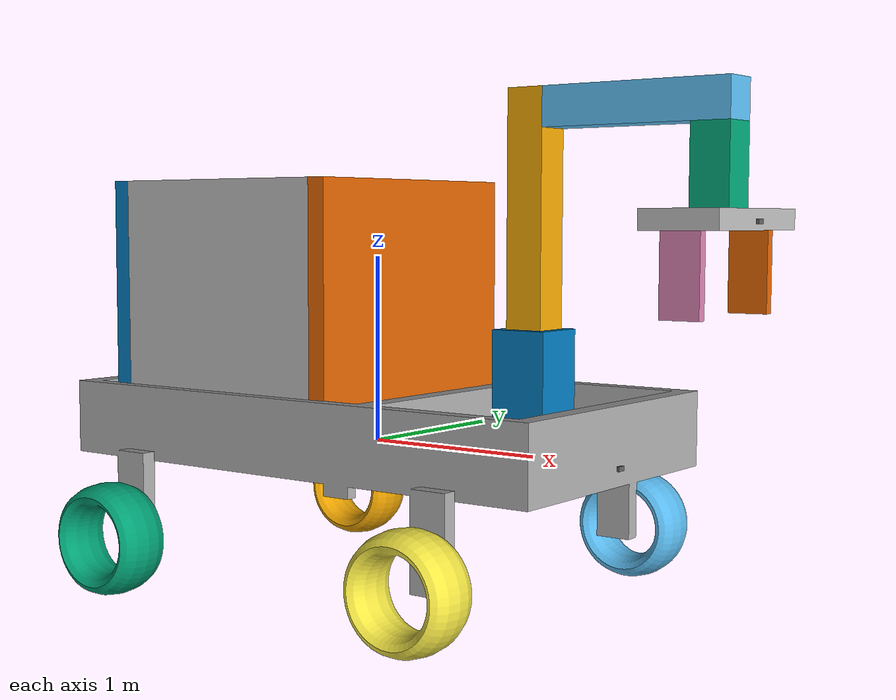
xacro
<?xml version="1.0"?>
<!-- created with Phobos 1.0.1 "Capricious Choutengan" -->
  <robot name="robot" xmlns:xacro="http://wiki.ros.org/xacro">

    <xacro:include filename="$(find robot_description)/urdf/sensors/sensors.urdf.xacro"/>
    <xacro:arg name="prefix" default=""/>
    <xacro:arg name="my_robot" default=""/>

    <link name="arm1">
      <inertial>
        <origin xyz="0 0.62709 0" rpy="0 0 0"/>
        <mass value="4.0"/>
        <inertia ixx="1e-05" ixy="0" ixz="0" iyy="0.00044" iyz="0" izz="2e-05"/>
      </inertial>
      <visual name="Cube.006">
        <origin xyz="0 0.62709 0" rpy="-1.5708 0 0"/>
        <geometry>
          <box size="0.2 0.2 1.2"/>
        </geometry>
      </visual>
      <collision name="Cube.006.000">
        <origin xyz="0 0.62709 0" rpy="-1.5708 0 0"/>
        <geometry>
          <box size="0.2 0.2 1.2"/>
        </geometry>
      </collision>
    </link>

    <link name="arm2">
      <inertial>
        <origin xyz="0.6 0 0" rpy="0 0 0"/>
        <mass value="2.0"/>
        <inertia ixx="0.00083" ixy="0" ixz="0" iyy="2e-05" iyz="0" izz="2e-05"/>
      </inertial>
      <visual name="Cube.007">
        <origin xyz="0.6 0 0" rpy="0 0 0"/>
        <geometry>
          <box size="1.0 0.2 0.2"/>
        </geometry>
      </visual>
      <collision name="Cube.007">
        <origin xyz="0.6 0 0" rpy="0 0 0"/>
        <geometry>
          <box size="1.0 0.2 0.2"/>
        </geometry>
      </collision>
    </link>

    <link name="arm3">
      <inertial>
        <origin xyz="0 -0.3 0" rpy="0 0 0"/>
        <mass value="1.0"/>
        <inertia ixx="2e-05" ixy="0" ixz="0" iyy="2e-05" iyz="0" izz="2e-05"/>
      </inertial>
      <visual name="Cube.008">
        <origin xyz="0 -0.3 0" rpy="-1.5708 0 0"/>
        <geometry>
          <box size="0.2 0.2 0.4"/>
        </geometry>
      </visual>
      <collision name="Cube.008">
        <origin xyz="0 -0.3 0" rpy="-1.5708 0 0"/>
        <geometry>
          <box size="0.2 0.2 0.4"/>
        </geometry>
      </collision>
    </link>

    <link name="base_link">
      <inertial>
        <origin xyz="0 0 0" rpy="0 0 0"/>
        <mass value="150.0"/>
        <inertia ixx="37.11703" ixy="10.21381" ixz="0" iyy="63.78499" iyz="0" izz="72.02697"/>
      </inertial>
      <visual name="Cube.000.000">
        <origin xyz="0 0 0" rpy="1.5708 0 0"/>
        <geometry>
          <mesh filename="file://$(find robot_description)/meshes/dae/Cube.025.dae" scale="1.0 1.0 0.81818"/>
        </geometry>
        <material name="Material"/>
      </visual>
      <collision name="Cube.000.000.000">
        <origin xyz="0 0 0" rpy="1.5708 0 0"/>
        <geometry>
          <mesh filename="file://$(find robot_description)/meshes/dae/Cube.027.dae" scale="1.0 1.0 0.81818"/>
        </geometry>
      </collision>
    </link>

    <link name="base_arm">
      <inertial>
        <origin xyz="0 0 0" rpy="0 0 0"/>
        <mass value="1.0"/>
        <inertia ixx="0.00013" ixy="0" ixz="0" iyy="0.00041" iyz="0" izz="0.00013"/>
      </inertial>
      <visual name="Cube.005">
        <origin xyz="0 0 0" rpy="0 0 0"/>
        <geometry>
          <box size="0.3 0.3 0.5"/>
        </geometry>
      </visual>
      <collision name="Cube.005.000">
        <origin xyz="0 0 0" rpy="0 0 0"/>
        <geometry>
          <mesh filename="file://$(find robot_description)/meshes/dae/Cube.071.dae" scale="0.6 0.4 1.0"/>
        </geometry>
      </collision>
    </link>

    <link name="claw_1">
      <inertial>
        <origin xyz="0 -0.25 0" rpy="0 0 0"/>
        <mass value="0.2"/>
        <inertia ixx="2e-05" ixy="0" ixz="0" iyy="2e-05" iyz="0" izz="2e-05"/>
      </inertial>
      <visual name="Cube.011">
        <origin xyz="0 -0.25 0" rpy="-1.5708 0 0"/>
        <geometry>
          <box size="0.2 0.05 0.4"/>
        </geometry>
      </visual>
      <collision name="Cube.011">
        <origin xyz="0 -0.25 0" rpy="-1.5708 0 0"/>
        <geometry>
          <box size="0.2 0.05 0.4"/>
        </geometry>
      </collision>
    </link>

    <link name="claw_2">
      <inertial>
        <origin xyz="0 0.25 0" rpy="0 0 0"/>
        <mass value="0.2"/>
        <inertia ixx="2e-05" ixy="0" ixz="0" iyy="2e-05" iyz="0" izz="2e-05"/>
      </inertial>
      <visual name="Cube.010">
        <origin xyz="0 0.25 0" rpy="1.5708 0 0"/>
        <geometry>
          <box size="0.2 0.05 0.4"/>
        </geometry>
      </visual>
      <collision name="Cube.010">
        <origin xyz="0 0.25 0" rpy="1.5708 0 0"/>
        <geometry>
          <box size="0.2 0.05 0.4"/>
        </geometry>
      </collision>
    </link>

    <link name="end_effector">
      <inertial>
        <origin xyz="0 0 0" rpy="0 0 0"/>
        <mass value="1.5"/>
        <inertia ixx="0.00013" ixy="0" ixz="0" iyy="0.00054" iyz="0" izz="1e-05"/>
      </inertial>
      <visual name="Cube.009">
        <origin xyz="0 0 0" rpy="0 0 0"/>
        <geometry>
          <box size="0.4 0.8 0.1"/>
        </geometry>
      </visual>
      <collision name="Cube.009">
        <origin xyz="0 0 0" rpy="0 0 0"/>
        <geometry>
          <box size="0.4 0.8 0.1"/>
        </geometry>
      </collision>
    </link>

    <link name="left_b_wheel">
      <inertial>
        <origin xyz="0 0 0" rpy="0 0 0"/>
        <mass value="2.0"/>
        <inertia ixx="0.01936" ixy="0" ixz="0" iyy="0.03745" iyz="0" izz="0.7564"/>
      </inertial>
      <visual name="Torus.000">
        <origin xyz="0 0 0" rpy="-3.14159 0 0"/>
        <geometry>
          <mesh filename="file://$(find robot_description)/meshes/dae/Torus.004.dae" scale="0.24 0.24 0.6"/>
        </geometry>
      </visual>
      <collision name="Torus.000.000">
        <origin xyz="0 0 0" rpy="-3.14159 0 0"/>
        <geometry>
          <mesh filename="file://$(find robot_description)/meshes/dae/Torus.005.dae" scale="0.6 0.6 0.6"/>
        </geometry>
      </collision>
    </link>

    <link name="left_f_wheel">
      <inertial>
        <origin xyz="0 0 0" rpy="0 0 0"/>
        <mass value="2.0"/>
        <inertia ixx="0.01936" ixy="0" ixz="0" iyy="0.03745" iyz="0" izz="0.7564"/>
      </inertial>
      <visual name="Torus.003">
        <origin xyz="0 0 0" rpy="0 0 0"/>
        <geometry>
          <mesh filename="file://$(find robot_description)/meshes/dae/Torus.003.dae" scale="0.24 0.24 0.6"/>
        </geometry>
      </visual>
      <collision name="Torus.003.000">
        <origin xyz="0 0 0" rpy="0 0 0"/>
        <geometry>
          <mesh filename="file://$(find robot_description)/meshes/dae/Torus.006.dae" scale="0.6 0.6 0.6"/>
        </geometry>
      </collision>
    </link>

    <link name="right_b_wheel">
      <inertial>
        <origin xyz="0 0 0" rpy="0 0 0"/>
        <mass value="2.0"/>
        <inertia ixx="0.01936" ixy="0" ixz="0" iyy="0.03745" iyz="0" izz="0.7564"/>
      </inertial>
      <visual name="Torus.001">
        <origin xyz="0 0 0" rpy="-3.14159 0 0"/>
        <geometry>
          <mesh filename="file://$(find robot_description)/meshes/dae/Torus.007.dae" scale="0.24 0.24 0.6"/>
        </geometry>
      </visual>
      <collision name="Torus.001.000">
        <origin xyz="0 0 0" rpy="-3.14159 0 0"/>
        <geometry>
          <mesh filename="file://$(find robot_description)/meshes/dae/Torus.008.dae" scale="0.6 0.6 0.6"/>
        </geometry>
      </collision>
    </link>

    <link name="right_f_wheel">
      <inertial>
        <origin xyz="0 0 0" rpy="0 0 0"/>
        <mass value="2.0"/>
        <inertia ixx="0.14197" ixy="0" ixz="0" iyy="0.23407" iyz="0" izz="0.14197"/>
      </inertial>
      <visual name="Torus.002">
        <origin xyz="0 0 0" rpy="-3.14159 0 0"/>
        <geometry>
          <mesh filename="file://$(find robot_description)/meshes/dae/Torus.002.dae" scale="0.24 0.24 0.6"/>
        </geometry>
      </visual>
      <collision name="Torus.002.000">
        <origin xyz="0 0 0" rpy="-3.14159 0 0"/>
        <geometry>
          <mesh filename="file://$(find robot_description)/meshes/dae/Torus.000.dae" scale="0.6 0.6 0.6"/>
        </geometry>
      </collision>
    </link>

    <link name="zback_box">
      <inertial>
        <origin xyz="0 0 0" rpy="0 0 0"/>
        <mass value="0.001"/>
        <inertia ixx="0.001" ixy="0" ixz="0" iyy="0.001" iyz="0" izz="0.001"/>
      </inertial>
      <visual name="Cube">
        <origin xyz="0 0 0" rpy="0 0 0"/>
        <geometry>
          <box size="0.1 1.5 1.35"/>
        </geometry>
      </visual>
      <collision name="Cube.000">
        <origin xyz="0 0 0" rpy="0 0 0"/>
        <geometry>
          <mesh filename="file://$(find robot_description)/meshes/dae/Cube.033.dae" scale="1.0 1.0 1.0"/>
        </geometry>
      </collision>
    </link>

    <link name="zfront_box">
      <inertial>
        <origin xyz="0 0 0" rpy="0 0 0"/>
        <mass value="0.001"/>
        <inertia ixx="0.001" ixy="0" ixz="0" iyy="0.001" iyz="0" izz="0.001"/>
      </inertial>
      <visual name="Cube.002">
        <origin xyz="0 0 0" rpy="0 0 0"/>
        <geometry>
          <box size="0.1 1.5 1.35"/>
        </geometry>
      </visual>
      <collision name="Cube.002.000">
        <origin xyz="0 0 0" rpy="0 0 0"/>
        <geometry>
          <mesh filename="file://$(find robot_description)/meshes/dae/Cube.034.dae" scale="1.0 1.0 1.0"/>
        </geometry>
      </collision>
    </link>

    <link name="zleft_box">
      <inertial>
        <origin xyz="0 0 0" rpy="0 0 0"/>
        <mass value="0.001"/>
        <inertia ixx="0.001" ixy="0" ixz="0" iyy="0.001" iyz="0" izz="0.001"/>
      </inertial>
      <visual name="Cube.003">
        <origin xyz="0 0 0" rpy="0 0 0"/>
        <geometry>
          <box size="0.1 1.3 1.35"/>
        </geometry>
      </visual>
      <collision name="Cube.003.000">
        <origin xyz="0 0 0" rpy="0 0 0"/>
        <geometry>
          <mesh filename="file://$(find robot_description)/meshes/dae/Cube.032.dae" scale="1.0 1.0 1.0"/>
        </geometry>
      </collision>
    </link>

    <link name="zright_box">
      <inertial>
        <origin xyz="0 0 0" rpy="0 0 0"/>
        <mass value="0.001"/>
        <inertia ixx="0.001" ixy="0" ixz="0" iyy="0.001" iyz="0" izz="0.001"/>
      </inertial>
      <visual name="Cube.004">
        <origin xyz="0 0 0" rpy="0 0 0"/>
        <geometry>
          <box size="0.1 1.3 1.35"/>
        </geometry>
      </visual>
      <collision name="Cube.004.000">
        <origin xyz="0 0 0" rpy="0 0 0"/>
        <geometry>
          <mesh filename="file://$(find robot_description)/meshes/dae/Cube.035.dae" scale="1.0 1.0 1.0"/>
        </geometry>
      </collision>
    </link>

    <joint name="arm1" type="revolute">
      <origin xyz="0 0 0.22291" rpy="1.5708 0 0"/>
      <parent link="base_arm"/>
      <child link="arm1"/>
      <axis xyz="0 0 1.0"/>
      <limit lower="-1" upper="0.5" effort="0" velocity="0"/>
    </joint>

    <joint name="arm2" type="continuous">
      <origin xyz="0 1.12709 0" rpy="-1.5708 0 0"/>
      <parent link="arm1"/>
      <child link="arm2"/>
      <axis xyz="0 0 1.0"/>
      <limit effort="0" velocity="0"/>
    </joint>

    <joint name="arm3" type="revolute">
      <origin xyz="1.0 0 0" rpy="1.5708 0 0"/>
      <parent link="arm2"/>
      <child link="arm3"/>
      <axis xyz="0 0 1.0"/>
      <limit lower="-0.6" upper="3.1" effort="0" velocity="0"/>
    </joint>

    <joint name="base_arm" type="continuous">
      <origin xyz="1.0 0 0.4" rpy="0 0 0"/>
      <parent link="base_link"/>
      <child link="base_arm"/>
      <axis xyz="0 0 1.0"/>
      <limit effort="0" velocity="0"/>
    </joint>

    <joint name="claw_1" type="prismatic">
      <origin xyz="0 0.35 0" rpy="1.5708 0 0"/>
      <parent link="end_effector"/>
      <child link="claw_1"/>
      <axis xyz="0 0 1.0"/>
      <limit lower="0" upper="0.2" effort="0" velocity="0"/>
    </joint>

    <joint name="claw_2" type="prismatic">
      <origin xyz="0 -0.35 0" rpy="-1.5708 0 0"/>
      <parent link="end_effector"/>
      <child link="claw_2"/>
      <axis xyz="0 0 1.0"/>
      <limit lower="0" upper="0.2" effort="0" velocity="0"/>
    </joint>

    <joint name="end_effector" type="continuous">
      <origin xyz="0 -0.55 0" rpy="-1.5708 0 0"/>
      <parent link="arm3"/>
      <child link="end_effector"/>
      <axis xyz="0 0 1.0"/>
      <limit effort="0" velocity="0"/>
    </joint>

    <joint name="left_b_wheel" type="continuous">
      <origin xyz="-1.0 1.05 -0.5" rpy="-1.5708 0 0"/>
      <parent link="base_link"/>
      <child link="left_b_wheel"/>
      <axis xyz="0 0 1.0"/>
      <limit effort="0" velocity="0"/>
    </joint>

    <joint name="left_f_wheel" type="continuous">
      <origin xyz="1.0 1.05 -0.5" rpy="-1.5708 0 0"/>
      <parent link="base_link"/>
      <child link="left_f_wheel"/>
      <axis xyz="0 0 1.0"/>
      <limit effort="0" velocity="0"/>
    </joint>

    <joint name="right_b_wheel" type="continuous">
      <origin xyz="-1.0 -1.05 -0.5" rpy="-1.5708 0 0"/>
      <parent link="base_link"/>
      <child link="right_b_wheel"/>
      <axis xyz="0 0 1.0"/>
      <limit effort="0" velocity="0"/>
    </joint>

    <joint name="right_f_wheel" type="continuous">
      <origin xyz="1.0 -1.05 -0.5" rpy="-1.5708 0 0"/>
      <parent link="base_link"/>
      <child link="right_f_wheel"/>
      <axis xyz="0 0 1.0"/>
      <limit effort="0" velocity="0"/>
    </joint>

    <joint name="zback_box" type="fixed">
      <origin xyz="-1.2 0 0.735" rpy="0 0 0"/>
      <parent link="base_link"/>
      <child link="zback_box"/>
    </joint>

    <joint name="zfront_box" type="fixed">
      <origin xyz="0.2 0 0.735" rpy="0 0 0"/>
      <parent link="base_link"/>
      <child link="zfront_box"/>
    </joint>

    <joint name="zleft_box" type="fixed">
      <origin xyz="-0.5 0.7 0.735" rpy="0 0 1.5708"/>
      <parent link="base_link"/>
      <child link="zleft_box"/>
    </joint>

    <joint name="zright_box" type="fixed">
      <origin xyz="-0.5 -0.7 0.735" rpy="0 0 1.5708"/>
      <parent link="base_link"/>
      <child link="zright_box"/>
    </joint>

    <material name="Material">
      <color rgba="0.64 0.64 0.64 1.0"/>
    </material>

    <xacro:sensor_camera node_name="base_camera" node_namespace="$(arg my_robot)" frame_prefix="$(arg prefix)base_" parent="$(arg prefix)base_link" >
      <origin xyz="1.5 0.0 -0.01" rpy="0 0 0"/>
    </xacro:sensor_camera>
    <xacro:sensor_camera node_name="arm_camera" node_namespace="$(arg my_robot)" frame_prefix="$(arg prefix)arm_" parent="$(arg prefix)end_effector" >
      <origin xyz="0.2 0.0 -0.01" rpy="0 0 0"/>
    </xacro:sensor_camera>
    <xacro:sensor_imu ns="$(arg my_robot)" prefix="$(arg prefix)imu" parent="$(arg prefix)base_link">
      <origin xyz="0.0 0.0 0.0" rpy="0 0 0"/>
    </xacro:sensor_imu>

</robot>

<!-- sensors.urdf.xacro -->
<robot name="sensors" xmlns:xacro="http://wiki.ros.org/xacro">
    <!-- ######## UTILS ######## -->
    <xacro:macro name="solid_cuboid_inertia" params="m w h d">
        <inertia ixx="${(m*(h*h+d*d))/12}" ixy="0" ixz="0" iyy="${(m*(w*w+d*d))/12}" iyz="0" izz="${(m*(w*w+h*h))/12}"/>
    </xacro:macro>
    <!-- ######### IMU ######### -->
    <xacro:macro name="sensor_imu" params="prefix ns:='' topic:='imu/data' parent *origin">
        <joint name="${prefix}_joint" type="fixed">
            <axis xyz="1 0 0"/>
            <!--origin xyz="0 0 0.2825"/-->
            <xacro:insert_block name="origin"/>
            <parent link="${parent}"/>
            <child link="${prefix}_link"/>
        </joint>
        <link name="${prefix}_link">
            <inertial>
                <origin xyz="0.0 0 0.01" rpy="0 0 0"/>
                <mass value="0.005"/>
                <xacro:solid_cuboid_inertia m="0.005" w="0.001" h="0.001" d="0.001"/>
            </inertial>
            <visual>
                <origin rpy="0 0 0" xyz="0 0 0"/>
                <geometry>
                    <box size="0.001 0.001 0.001"/>
                </geometry>
            </visual>
        </link>
        <gazebo reference="${prefix}_link">
            <gravity>true</gravity>
            <sensor name="${prefix}_imu_sensor" type="imu">
                <always_on>true</always_on>
                <update_rate>100</update_rate>
                <visualize>true</visualize>
                <topic>__default_topic__</topic>
                <plugin filename="libgazebo_ros_imu_sensor.so" name="${prefix}_imu_plugin">
                    <topicName>${topic}</topicName>
                    <bodyName>${prefix}_link</bodyName>
                    <updateRateHZ>100.0</updateRateHZ>
                    <gaussianNoise>0.0</gaussianNoise>
                    <xyzOffset>0 0 0</xyzOffset>
                    <rpyOffset>0 0 0</rpyOffset>
                    <frameName>${prefix}_link</frameName>
                </plugin>
                <pose>0 0 0 0 0 0</pose>
            </sensor>
        </gazebo>
    </xacro:macro>
    <!-- ####### CAMERA ####### -->
    <xacro:macro name="sensor_camera_generic" params="frame_prefix parent *origin node_name:=camera node_namespace:=${None} topic_prefix:=~/ horizontal_fov:=80 vertical_fov:=60 video_width:=1280 video_height:=720 video_fps:=30">
        <!-- node_namespace is used from node_name if not set -->
        <xacro:if value="${node_namespace == None}">
            <xacro:property name="node_namespace" value="${node_name}"/>
        </xacro:if>
        <joint name="${frame_prefix}camera_base_joint" type="fixed">
            <xacro:insert_block name="origin"/>
            <parent link="${parent}"/>
            <child link="${frame_prefix}camera_base_link"/>
        </joint>
        <link name="${frame_prefix}camera_base_link">
            <visual>
                <origin xyz="0 0 0" rpy="0 0 0"/>
                <geometry>
                    <box size="0.025 0.05 0.025"/>
                </geometry>
                <material name="light_grey">
                    <color rgba="0.35 0.35 0.35 1"/>
                </material>
            </visual>
            <collision>
                <origin xyz="0.0 0.0 0.0" rpy="0 0 0"/>
                <geometry>
                    <box size="0.025 0.05 0.025"/>
                </geometry>
            </collision>
            <inertial>
                <mass value="0.135"/>
                <origin xyz="0 0 0"/>
                <xacro:solid_cuboid_inertia m="0.135" w="0.033" h="0.175" d="0.03"/>
            </inertial>
        </link>
        <!-- Camera-->
        <joint name="${frame_prefix}camera_joint" type="fixed">
            <origin xyz="0.0 -0.06 0.0" rpy="0.0 0.0 0.0"/>
            <parent link="${frame_prefix}camera_base_link"/>
            <child link="${frame_prefix}camera_frame"/>
        </joint>
        <link name="${frame_prefix}camera_frame"/>
        <joint name="${frame_prefix}color_optical_joint" type="fixed">
            <origin xyz="0.0 0 0.0" rpy="${-pi/2} 0.0 ${-pi/2}"/>
            <parent link="${frame_prefix}camera_frame"/>
            <child link="${frame_prefix}camera_optical_frame"/>
        </joint>
        <link name="${frame_prefix}camera_optical_frame"/>
        <gazebo reference="${frame_prefix}camera_frame">
            <sensor name="${frame_prefix}sensor" type="camera">
            </sensor>
        </gazebo>
    </xacro:macro>
    <xacro:macro name="sensor_camera" params="frame_prefix parent *origin node_namespace:=cameras node_name topic_prefix:=~/">
        <xacro:sensor_camera_generic frame_prefix="${frame_prefix}" parent="${parent}" node_namespace="${node_namespace}" node_name="${node_name}" topic_prefix="${topic_prefix}" horizontal_fov="110" vertical_fov="70" video_width="1920" video_height="1080" video_fps="30">
            <xacro:insert_block name="origin"/>
        </xacro:sensor_camera_generic>
    </xacro:macro>
</robot>
